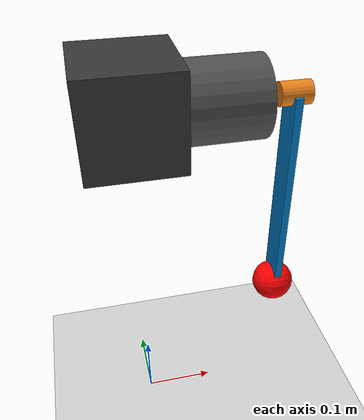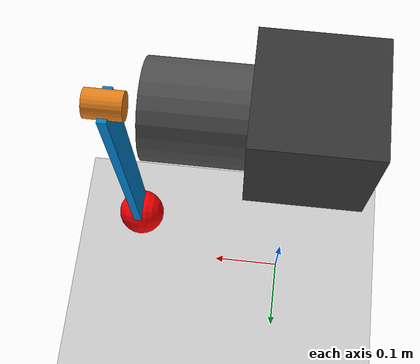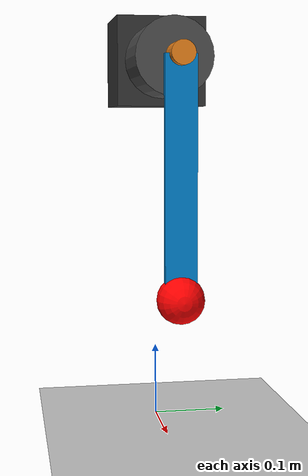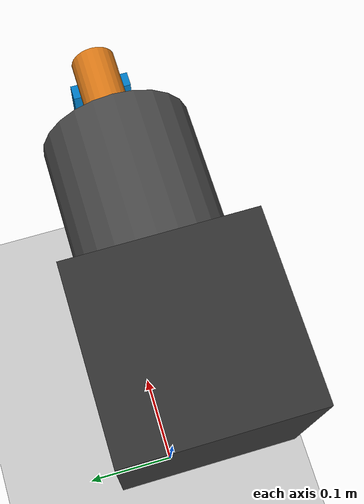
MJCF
<mujoco model="1dof_joint_warp">
    <compiler angle="radian" autolimits="true" inertiafromgeom="true"/>

    <!--
       Warp 仿真参数设置
       注意：Warp通常会忽略这里的timestep，而是使用yaml配置中的dt
    -->
    <option integrator="RK4" gravity="0 0 -9.81"/>

    <default>
      <joint damping="0.02" frictionloss="0.05" armature="0.005"/>
      <geom type="cylinder" size="0.05 0.02" rgba="0.7 0.7 0.7 1"/>
    </default>

    <worldbody>
      <!-- 地面物理实体 (无纹理) -->
      <geom name="floor" type="plane" size="0 0 0.1" rgba="0.8 0.8 0.8 1"/>

      <!-- 基座 -->
      <body name="base_link" pos="0 0 0.5">
        <geom type="box" size="0.06 0.06 0.06" rgba="0.2 0.2 0.2 1" mass="5.0"/>
        <geom type="cylinder" size="0.05 0.08" quat="0.707 0 0.707 0" pos="0.08 0 0" rgba="0.3 0.3 0.3 1" mass="1.0"/>

        <!-- 理想输出轴 -->
        <body name="gearbox_output_shaft" pos="0.2 0 0" euler="0 1.5708 0">
          <!--
             DOF 1: 理想关节 (被电机驱动)
          -->
          <joint name="joint_ideal" type="hinge" axis="0 0 1" range="-3.14 3.14"/>
          <geom type="cylinder" size="0.015 0.02" rgba="0.9 0.5 0.1 1" mass="0.1"/>

          <!-- 实际负载 -->
          <body name="actual_load" pos="0 0 0">
            <!--
               DOF 2: 回差关节 (被动)
               Warp 会识别到这个关节，所以系统的总 DOF 会变成 2
            -->
            <joint name="joint_backlash" type="hinge" axis="0 0 1"
                   range="-0.01 0.01" limited="true"
                   stiffness="0" damping="0.001" frictionloss="0" armature="0"/>

            <inertial pos="0.15 0 0" mass="0.5" diaginertia="0.005 0.005 0.005"/>
            <geom type="box" size="0.15 0.02 0.005" pos="0.15 0 0" rgba="0 0.5 0.8 1"/>
            <geom type="sphere" size="0.03" pos="0.3 0 0" rgba="1 0 0 1" mass="0.2"/>
          </body>
        </body>
      </body>
    </worldbody>

    <!--
      Warp 需要显式的排除碰撞，否则可能会报错或计算错误
    -->
    <contact>
      <exclude body1="base_link" body2="actual_load"/>
    </contact>

    <actuator>
      <!--
         Warp 解析器通常只看 joint name 和 gear
      -->
      <motor name="motor_driver" joint="joint_ideal" gear="6" ctrllimited="true" ctrlrange="-5 5"/>
    </actuator>
  </mujoco>
